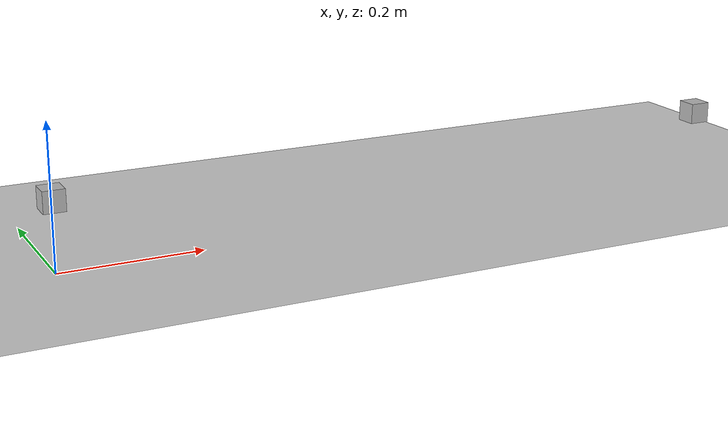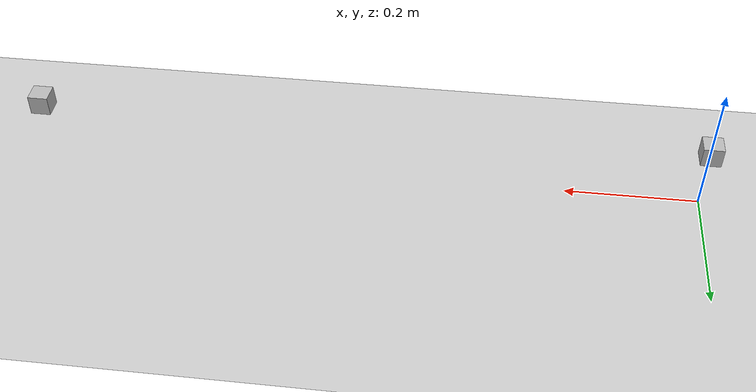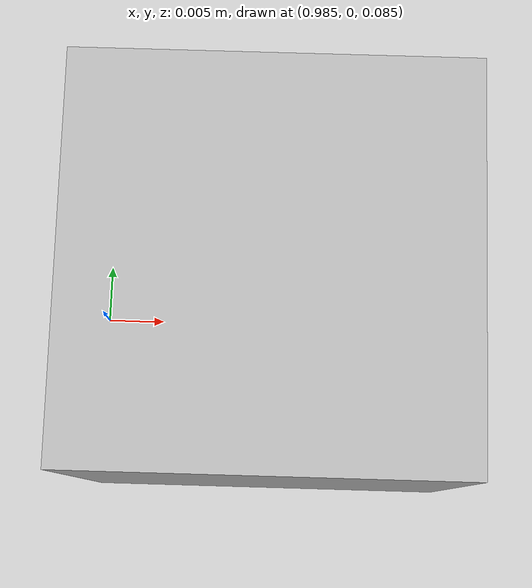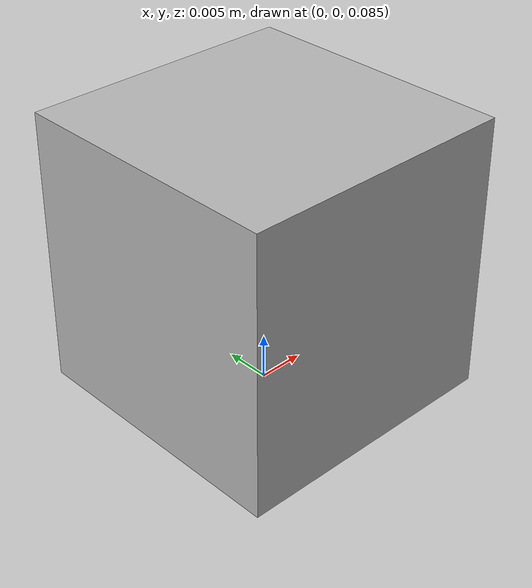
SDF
<?xml version="1.0" ?>
<sdf version="1.5">
  <world name="default">
    <!-- A global light source -->
    <include>
      <uri>model://sun</uri>
    </include>
    <!-- A ground plane -->
    <include>
      <uri>model://ground_plane</uri>
    </include>
    <scene>
      <sky>
        <clouds>
          <speed>12</speed>
        </clouds>
      </sky>
    </scene>
    <physics name='default_physics' default='0' type='ode'>
      <gravity>0 0 -9.8066</gravity>
      <ode>
        <solver>
          <type>quick</type>
          <iters>10</iters>
          <sor>1.3</sor>
          <use_dynamic_moi_rescaling>0</use_dynamic_moi_rescaling>
        </solver>
        <constraints>
          <cfm>0</cfm>
          <erp>0.2</erp>
          <contact_max_correcting_vel>100</contact_max_correcting_vel>
          <contact_surface_layer>0.001</contact_surface_layer>
        </constraints>
      </ode>
      <max_step_size>0.004</max_step_size>
      <real_time_factor>1</real_time_factor>
      <real_time_update_rate>250</real_time_update_rate>
      <magnetic_field>6.0e-6 2.3e-5 -4.2e-5</magnetic_field>
    </physics>
    <include>
      <name>box_1</name>
      <uri>model://payload_box</uri>
      <pose>0 0 0.1 0 0 0</pose>
    </include>
    <include>
      <name>box_2</name>
      <uri>model://payload_box</uri>
      <pose>1 0 0.1 0 0 0</pose>
    </include>
  </world>
</sdf>

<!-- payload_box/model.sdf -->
<sdf version="1.5">
  <model name="Payload box">
    <pose>0 0 0.75  0 0 0</pose>
    <static>false</static>
    <link name="link">
      <inertial>
        <mass>0.03</mass>
        <inertia>
          <ixx>0.01</ixx>
          <ixy>0</ixy>
          <ixz>0</ixz>
          <iyy>0.01</iyy>
          <iyz>0</iyz>
          <izz>0.01</izz>
        </inertia>
      </inertial>

      <collision name="collision">
        <geometry>
          <box>
              <size>0.03 0.03 0.03</size>
          </box>
        </geometry>
	<surface>
          <contact>
            <ode>
              <max_vel>0.1</max_vel>
              <min_depth>0.001</min_depth>
            </ode>
          </contact>
        </surface>
      </collision>
      <visual name="visual">
        <geometry>
          <box><size>0.03 0.03 0.03</size></box>
	    </geometry>
      </visual>
    </link>
  </model>
</sdf>
